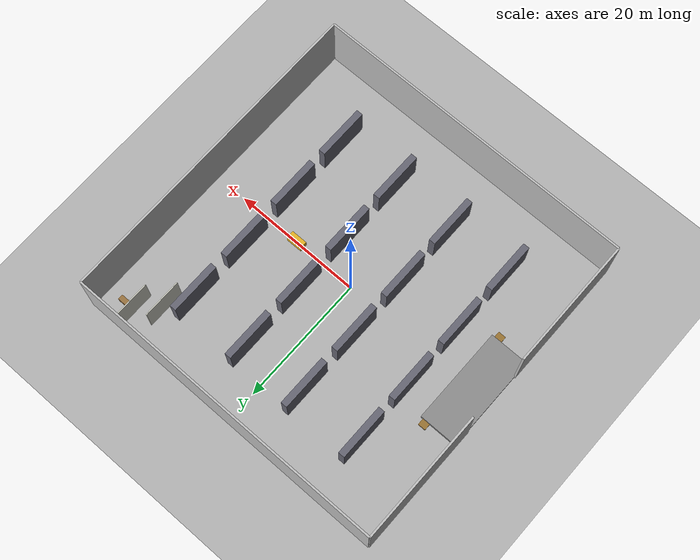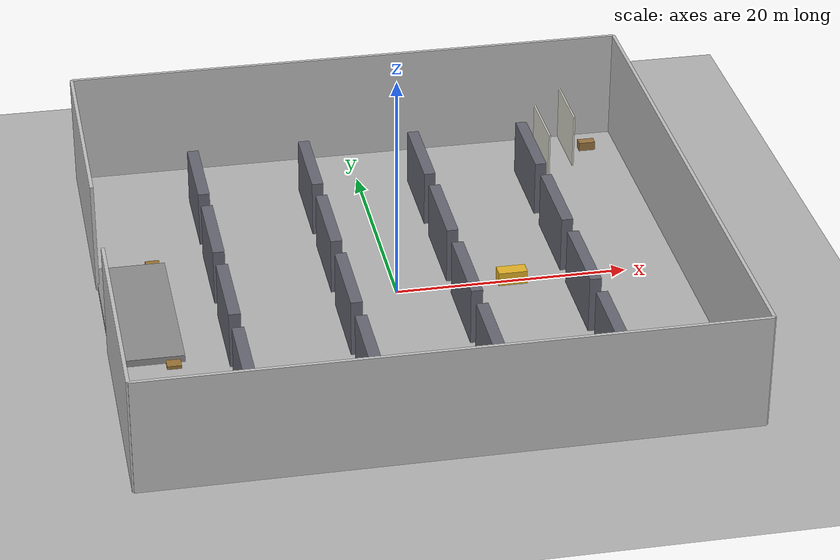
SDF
<?xml version="1.0"?>
<sdf version="1.8">
  <world name="leo_industrial">

    <!-- ── Physics ─────────────────────────────────────────────────── -->
    <physics name="1ms" type="ignored">
      <max_step_size>0.001</max_step_size>
      <real_time_factor>1.0</real_time_factor>
    </physics>

    <!-- ── Plugins ──────────────────────────────────────────────────── -->
    <plugin filename="ignition-gazebo-physics-system"
            name="ignition::gazebo::systems::Physics"/>
    <plugin filename="ignition-gazebo-sensors-system"
            name="ignition::gazebo::systems::Sensors">
      <render_engine>ogre2</render_engine>
    </plugin>
    <plugin filename="ignition-gazebo-scene-broadcaster-system"
            name="ignition::gazebo::systems::SceneBroadcaster"/>
    <plugin filename="ignition-gazebo-user-commands-system"
            name="ignition::gazebo::systems::UserCommands"/>
    <plugin filename="gz-sim-imu-system"
            name="gz::sim::systems::Imu"/>
    <plugin filename="ignition-gazebo-navsat-system"
            name="ignition::gazebo::systems::NavSat"/>

    <!-- ── GPS datum: Ankara ─────────────────────────────────────────── -->
    <spherical_coordinates>
      <surface_model>EARTH_WGS84</surface_model>
      <world_frame_orientation>ENU</world_frame_orientation>
      <latitude_deg>39.925018</latitude_deg>
      <longitude_deg>32.836956</longitude_deg>
      <elevation>890</elevation>
      <heading_deg>0</heading_deg>
    </spherical_coordinates>

    <!-- ── Lighting (industrial fluorescent) ────────────────────────── -->
    <light name="sun" type="directional">
      <cast_shadows>true</cast_shadows>
      <pose>0 0 12 0 0 0</pose>
      <diffuse>0.9 0.9 0.95 1</diffuse>
      <specular>0.2 0.2 0.25 1</specular>
      <attenuation>
        <range>1000</range>
        <constant>0.9</constant>
        <linear>0.01</linear>
        <quadratic>0.001</quadratic>
      </attenuation>
      <direction>-0.3 0.2 -0.9</direction>
    </light>

    <!-- ── Ground plane (concrete floor) ────────────────────────────── -->
    <model name="ground_plane">
      <static>true</static>
      <link name="link">
        <collision name="collision">
          <geometry>
            <plane>
              <normal>0 0 1</normal>
              <size>100 100</size>
            </plane>
          </geometry>
          <surface>
            <friction>
              <ode><mu>0.85</mu><mu2>0.85</mu2></ode>
            </friction>
          </surface>
        </collision>
        <visual name="visual">
          <geometry>
            <plane>
              <normal>0 0 1</normal>
              <size>100 100</size>
            </plane>
          </geometry>
          <material>
            <!-- Concrete -->
            <ambient>0.6 0.6 0.6 1</ambient>
            <diffuse>0.7 0.7 0.7 1</diffuse>
            <specular>0.1 0.1 0.1 1</specular>
          </material>
        </visual>
      </link>
    </model>

    <!-- ════════════════════════════════════════════════════════════════
         WAREHOUSE WALLS — Outer structure
         ════════════════════════════════════════════════════════════════ -->

    <!-- North wall -->
    <model name="wall_north">
      <static>true</static>
      <pose>0 25 5 0 0 0</pose>
      <link name="link">
        <collision name="c">
          <geometry><box><size>50 0.3 10</size></box></geometry>
        </collision>
        <visual name="v">
          <geometry><box><size>50 0.3 10</size></box></geometry>
          <material><ambient>0.7 0.7 0.7 1</ambient><diffuse>0.75 0.75 0.75 1</diffuse></material>
        </visual>
      </link>
    </model>

    <!-- South wall -->
    <model name="wall_south">
      <static>true</static>
      <pose>0 -25 5 0 0 0</pose>
      <link name="link">
        <collision name="c">
          <geometry><box><size>50 0.3 10</size></box></geometry>
        </collision>
        <visual name="v">
          <geometry><box><size>50 0.3 10</size></box></geometry>
          <material><ambient>0.7 0.7 0.7 1</ambient><diffuse>0.75 0.75 0.75 1</diffuse></material>
        </visual>
      </link>
    </model>

    <!-- East wall -->
    <model name="wall_east">
      <static>true</static>
      <pose>25 0 5 0 0 1.5708</pose>
      <link name="link">
        <collision name="c">
          <geometry><box><size>50 0.3 10</size></box></geometry>
        </collision>
        <visual name="v">
          <geometry><box><size>50 0.3 10</size></box></geometry>
          <material><ambient>0.7 0.7 0.7 1</ambient><diffuse>0.75 0.75 0.75 1</diffuse></material>
        </visual>
      </link>
    </model>

    <!-- West wall (with loading dock opening) -->
    <model name="wall_west_north">
      <static>true</static>
      <pose>-25 15 5 0 0 1.5708</pose>
      <link name="link">
        <collision name="c">
          <geometry><box><size>20 0.3 10</size></box></geometry>
        </collision>
        <visual name="v">
          <geometry><box><size>20 0.3 10</size></box></geometry>
          <material><ambient>0.7 0.7 0.7 1</ambient><diffuse>0.75 0.75 0.75 1</diffuse></material>
        </visual>
      </link>
    </model>

    <model name="wall_west_south">
      <static>true</static>
      <pose>-25 -15 5 0 0 1.5708</pose>
      <link name="link">
        <collision name="c">
          <geometry><box><size>20 0.3 10</size></box></geometry>
        </collision>
        <visual name="v">
          <geometry><box><size>20 0.3 10</size></box></geometry>
          <material><ambient>0.7 0.7 0.7 1</ambient><diffuse>0.75 0.75 0.75 1</diffuse></material>
        </visual>
      </link>
    </model>

    <!-- ════════════════════════════════════════════════════════════════
         STORAGE RACKS — Industrial shelving units
         ════════════════════════════════════════════════════════════════ -->

    <!-- Rack Row A (x = -15 to -5) -->
    <model name="rack_a1">
      <static>true</static>
      <pose>-15 15 2.5 0 0 0</pose>
      <link name="link">
        <collision name="c">
          <geometry><box><size>1 8 5</size></box></geometry>
        </collision>
        <visual name="v">
          <geometry><box><size>1 8 5</size></box></geometry>
          <material><ambient>0.3 0.3 0.35 1</ambient><diffuse>0.4 0.4 0.45 1</diffuse></material>
        </visual>
      </link>
    </model>

    <model name="rack_a2">
      <static>true</static>
      <pose>-15 5 2.5 0 0 0</pose>
      <link name="link">
        <collision name="c">
          <geometry><box><size>1 8 5</size></box></geometry>
        </collision>
        <visual name="v">
          <geometry><box><size>1 8 5</size></box></geometry>
          <material><ambient>0.3 0.3 0.35 1</ambient><diffuse>0.4 0.4 0.45 1</diffuse></material>
        </visual>
      </link>
    </model>

    <model name="rack_a3">
      <static>true</static>
      <pose>-15 -5 2.5 0 0 0</pose>
      <link name="link">
        <collision name="c">
          <geometry><box><size>1 8 5</size></box></geometry>
        </collision>
        <visual name="v">
          <geometry><box><size>1 8 5</size></box></geometry>
          <material><ambient>0.3 0.3 0.35 1</ambient><diffuse>0.4 0.4 0.45 1</diffuse></material>
        </visual>
      </link>
    </model>

    <model name="rack_a4">
      <static>true</static>
      <pose>-15 -15 2.5 0 0 0</pose>
      <link name="link">
        <collision name="c">
          <geometry><box><size>1 8 5</size></box></geometry>
        </collision>
        <visual name="v">
          <geometry><box><size>1 8 5</size></box></geometry>
          <material><ambient>0.3 0.3 0.35 1</ambient><diffuse>0.4 0.4 0.45 1</diffuse></material>
        </visual>
      </link>
    </model>

    <!-- Rack Row B (x = -5 to 5) -->
    <model name="rack_b1">
      <static>true</static>
      <pose>-5 15 2.5 0 0 0</pose>
      <link name="link">
        <collision name="c">
          <geometry><box><size>1 8 5</size></box></geometry>
        </collision>
        <visual name="v">
          <geometry><box><size>1 8 5</size></box></geometry>
          <material><ambient>0.3 0.3 0.35 1</ambient><diffuse>0.4 0.4 0.45 1</diffuse></material>
        </visual>
      </link>
    </model>

    <model name="rack_b2">
      <static>true</static>
      <pose>-5 5 2.5 0 0 0</pose>
      <link name="link">
        <collision name="c">
          <geometry><box><size>1 8 5</size></box></geometry>
        </collision>
        <visual name="v">
          <geometry><box><size>1 8 5</size></box></geometry>
          <material><ambient>0.3 0.3 0.35 1</ambient><diffuse>0.4 0.4 0.45 1</diffuse></material>
        </visual>
      </link>
    </model>

    <model name="rack_b3">
      <static>true</static>
      <pose>-5 -5 2.5 0 0 0</pose>
      <link name="link">
        <collision name="c">
          <geometry><box><size>1 8 5</size></box></geometry>
        </collision>
        <visual name="v">
          <geometry><box><size>1 8 5</size></box></geometry>
          <material><ambient>0.3 0.3 0.35 1</ambient><diffuse>0.4 0.4 0.45 1</diffuse></material>
        </visual>
      </link>
    </model>

    <model name="rack_b4">
      <static>true</static>
      <pose>-5 -15 2.5 0 0 0</pose>
      <link name="link">
        <collision name="c">
          <geometry><box><size>1 8 5</size></box></geometry>
        </collision>
        <visual name="v">
          <geometry><box><size>1 8 5</size></box></geometry>
          <material><ambient>0.3 0.3 0.35 1</ambient><diffuse>0.4 0.4 0.45 1</diffuse></material>
        </visual>
      </link>
    </model>

    <!-- Rack Row C (x = 5 to 15) -->
    <model name="rack_c1">
      <static>true</static>
      <pose>5 15 2.5 0 0 0</pose>
      <link name="link">
        <collision name="c">
          <geometry><box><size>1 8 5</size></box></geometry>
        </collision>
        <visual name="v">
          <geometry><box><size>1 8 5</size></box></geometry>
          <material><ambient>0.3 0.3 0.35 1</ambient><diffuse>0.4 0.4 0.45 1</diffuse></material>
        </visual>
      </link>
    </model>

    <model name="rack_c2">
      <static>true</static>
      <pose>5 5 2.5 0 0 0</pose>
      <link name="link">
        <collision name="c">
          <geometry><box><size>1 8 5</size></box></geometry>
        </collision>
        <visual name="v">
          <geometry><box><size>1 8 5</size></box></geometry>
          <material><ambient>0.3 0.3 0.35 1</ambient><diffuse>0.4 0.4 0.45 1</diffuse></material>
        </visual>
      </link>
    </model>

    <model name="rack_c3">
      <static>true</static>
      <pose>5 -5 2.5 0 0 0</pose>
      <link name="link">
        <collision name="c">
          <geometry><box><size>1 8 5</size></box></geometry>
        </collision>
        <visual name="v">
          <geometry><box><size>1 8 5</size></box></geometry>
          <material><ambient>0.3 0.3 0.35 1</ambient><diffuse>0.4 0.4 0.45 1</diffuse></material>
        </visual>
      </link>
    </model>

    <model name="rack_c4">
      <static>true</static>
      <pose>5 -15 2.5 0 0 0</pose>
      <link name="link">
        <collision name="c">
          <geometry><box><size>1 8 5</size></box></geometry>
        </collision>
        <visual name="v">
          <geometry><box><size>1 8 5</size></box></geometry>
          <material><ambient>0.3 0.3 0.35 1</ambient><diffuse>0.4 0.4 0.45 1</diffuse></material>
        </visual>
      </link>
    </model>

    <!-- Rack Row D (x = 15 to 20) -->
    <model name="rack_d1">
      <static>true</static>
      <pose>15 15 2.5 0 0 0</pose>
      <link name="link">
        <collision name="c">
          <geometry><box><size>1 8 5</size></box></geometry>
        </collision>
        <visual name="v">
          <geometry><box><size>1 8 5</size></box></geometry>
          <material><ambient>0.3 0.3 0.35 1</ambient><diffuse>0.4 0.4 0.45 1</diffuse></material>
        </visual>
      </link>
    </model>

    <model name="rack_d2">
      <static>true</static>
      <pose>15 5 2.5 0 0 0</pose>
      <link name="link">
        <collision name="c">
          <geometry><box><size>1 8 5</size></box></geometry>
        </collision>
        <visual name="v">
          <geometry><box><size>1 8 5</size></box></geometry>
          <material><ambient>0.3 0.3 0.35 1</ambient><diffuse>0.4 0.4 0.45 1</diffuse></material>
        </visual>
      </link>
    </model>

    <model name="rack_d3">
      <static>true</static>
      <pose>15 -5 2.5 0 0 0</pose>
      <link name="link">
        <collision name="c">
          <geometry><box><size>1 8 5</size></box></geometry>
        </collision>
        <visual name="v">
          <geometry><box><size>1 8 5</size></box></geometry>
          <material><ambient>0.3 0.3 0.35 1</ambient><diffuse>0.4 0.4 0.45 1</diffuse></material>
        </visual>
      </link>
    </model>

    <model name="rack_d4">
      <static>true</static>
      <pose>15 -15 2.5 0 0 0</pose>
      <link name="link">
        <collision name="c">
          <geometry><box><size>1 8 5</size></box></geometry>
        </collision>
        <visual name="v">
          <geometry><box><size>1 8 5</size></box></geometry>
          <material><ambient>0.3 0.3 0.35 1</ambient><diffuse>0.4 0.4 0.45 1</diffuse></material>
        </visual>
      </link>
    </model>

    <!-- ════════════════════════════════════════════════════════════════
         OFFICE AREA — Partitioned rooms (NE corner)
         ════════════════════════════════════════════════════════════════ -->

    <!-- Office partition 1 -->
    <model name="office_wall_1">
      <static>true</static>
      <pose>20 22 2.5 0 0 1.5708</pose>
      <link name="link">
        <collision name="c">
          <geometry><box><size>6 0.15 5</size></box></geometry>
        </collision>
        <visual name="v">
          <geometry><box><size>6 0.15 5</size></box></geometry>
          <material><ambient>0.8 0.8 0.75 1</ambient><diffuse>0.85 0.85 0.8 1</diffuse></material>
        </visual>
      </link>
    </model>

    <!-- Office partition 2 -->
    <model name="office_wall_2">
      <static>true</static>
      <pose>17 19 2.5 0 0 0</pose>
      <link name="link">
        <collision name="c">
          <geometry><box><size>0.15 6 5</size></box></geometry>
        </collision>
        <visual name="v">
          <geometry><box><size>0.15 6 5</size></box></geometry>
          <material><ambient>0.8 0.8 0.75 1</ambient><diffuse>0.85 0.85 0.8 1</diffuse></material>
        </visual>
      </link>
    </model>

    <!-- Office desk -->
    <model name="office_desk">
      <static>true</static>
      <pose>22 22 0.4 0 0 0</pose>
      <link name="link">
        <collision name="c">
          <geometry><box><size>1.5 0.8 0.8</size></box></geometry>
        </collision>
        <visual name="v">
          <geometry><box><size>1.5 0.8 0.8</size></box></geometry>
          <material><ambient>0.5 0.35 0.2 1</ambient><diffuse>0.6 0.45 0.25 1</diffuse></material>
        </visual>
      </link>
    </model>

    <!-- ════════════════════════════════════════════════════════════════
         LOADING DOCK — West side open area
         ════════════════════════════════════════════════════════════════ -->

    <!-- Loading dock platform -->
    <model name="loading_dock">
      <static>true</static>
      <pose>-22 0 0.3 0 0 0</pose>
      <link name="link">
        <collision name="c">
          <geometry><box><size>6 15 0.6</size></box></geometry>
          <surface><friction><ode><mu>0.9</mu></ode></friction></surface>
        </collision>
        <visual name="v">
          <geometry><box><size>6 15 0.6</size></box></geometry>
          <material><ambient>0.5 0.5 0.5 1</ambient><diffuse>0.55 0.55 0.55 1</diffuse></material>
        </visual>
      </link>
    </model>

    <!-- Pallets -->
    <model name="pallet_01">
      <static>true</static>
      <pose>-20 8 0.15 0 0 0</pose>
      <link name="link">
        <collision name="c">
          <geometry><box><size>1.2 1.0 0.3</size></box></geometry>
        </collision>
        <visual name="v">
          <geometry><box><size>1.2 1.0 0.3</size></box></geometry>
          <material><ambient>0.5 0.35 0.15 1</ambient><diffuse>0.6 0.45 0.2 1</diffuse></material>
        </visual>
      </link>
    </model>

    <model name="pallet_02">
      <static>true</static>
      <pose>-20 -8 0.15 0 0 0</pose>
      <link name="link">
        <collision name="c">
          <geometry><box><size>1.2 1.0 0.3</size></box></geometry>
        </collision>
        <visual name="v">
          <geometry><box><size>1.2 1.0 0.3</size></box></geometry>
          <material><ambient>0.5 0.35 0.15 1</ambient><diffuse>0.6 0.45 0.2 1</diffuse></material>
        </visual>
      </link>
    </model>

    <!-- ════════════════════════════════════════════════════════════════
         FORKLIFT — Moving obstacle (static for now)
         ════════════════════════════════════════════════════════════════ -->

    <model name="forklift">
      <static>true</static>
      <pose>10 0 0.6 0 0 0</pose>
      <link name="link">
        <collision name="c">
          <geometry><box><size>2.5 1.2 1.2</size></box></geometry>
        </collision>
        <visual name="v">
          <geometry><box><size>2.5 1.2 1.2</size></box></geometry>
          <material><ambient>0.8 0.6 0.1 1</ambient><diffuse>0.9 0.7 0.15 1</diffuse></material>
        </visual>
      </link>
    </model>

    <!-- ════════════════════════════════════════════════════════════════
         MARKERS — Navigation waypoints
         ════════════════════════════════════════════════════════════════ -->

    <marker name="marker_start">
      <static>true</static>
      <pose>0 0 0.1 0 0 0</pose>
      <link name="link">
        <visual name="v">
          <geometry><cylinder><radius>0.2</radius><length>0.2</length></cylinder></geometry>
          <material><ambient>0.2 0.8 0.2 1</ambient><diffuse>0.3 0.9 0.3 1</diffuse></material>
        </visual>
      </link>
    </marker>

  </world>
</sdf>
